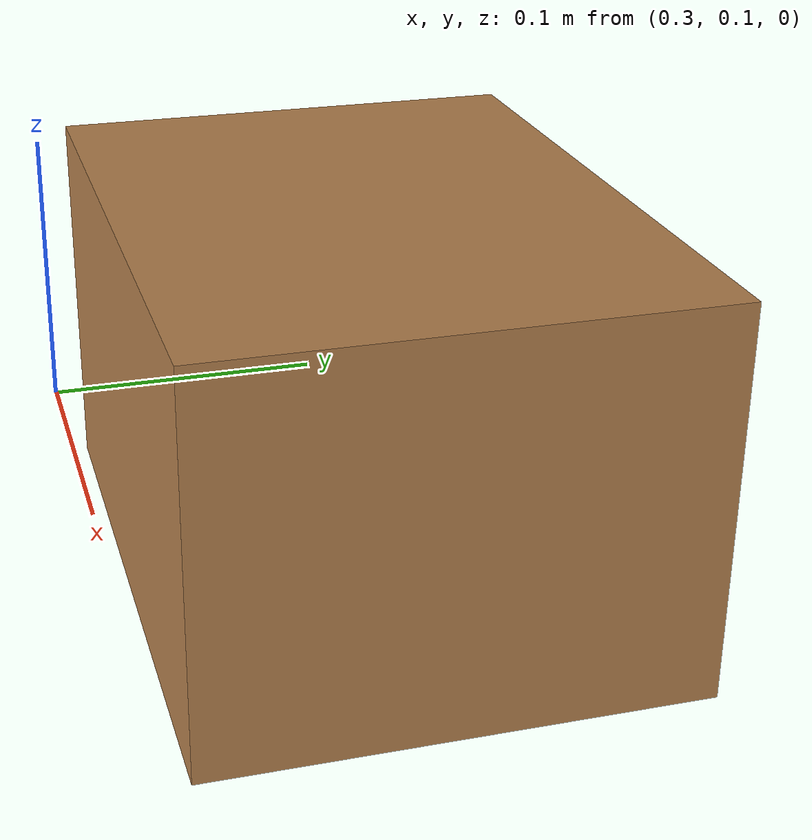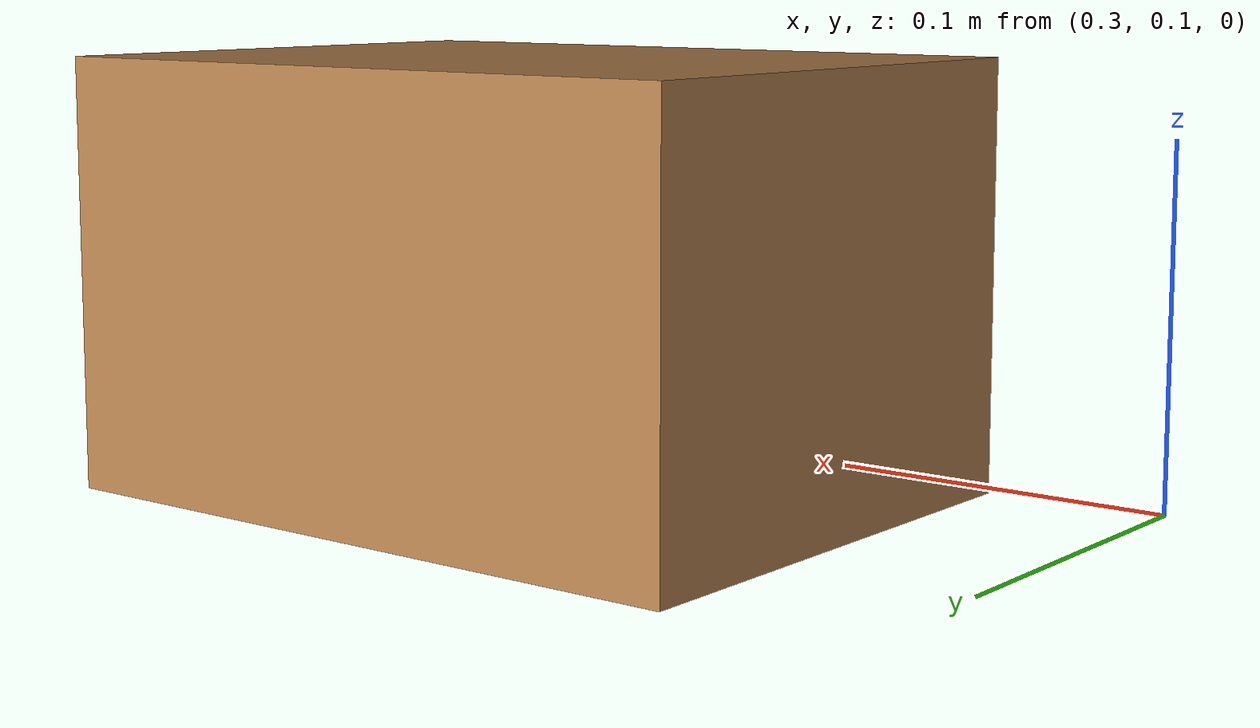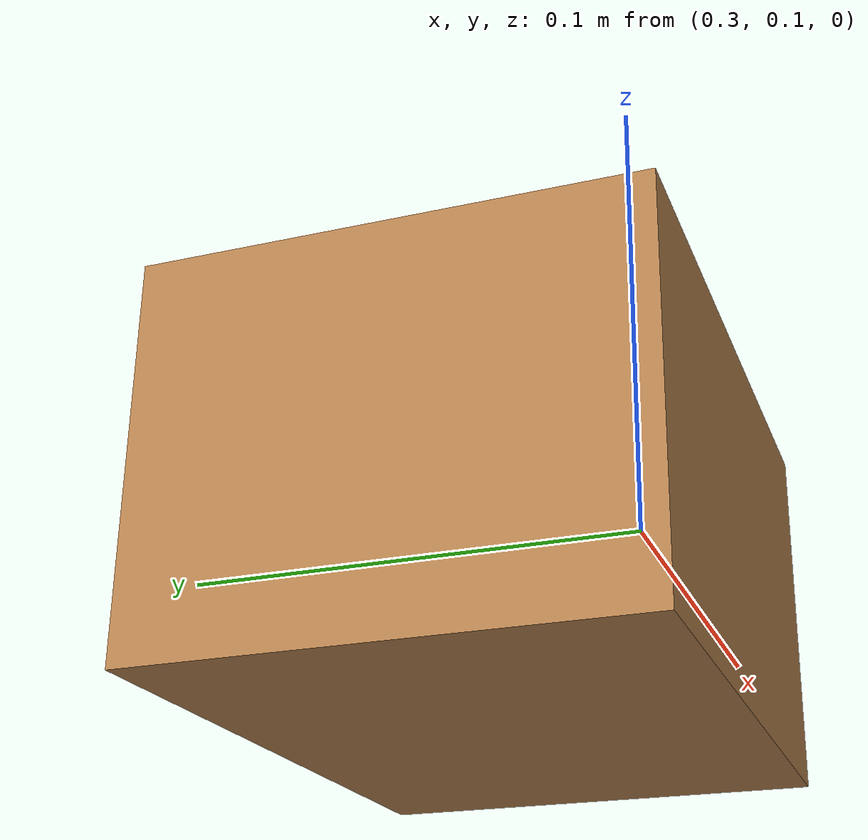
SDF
<?xml version='1.0'?>
<sdf version='1.6'>
  <model name="boxLeft">
    <link name="boxLeft">
      <pose>0.45 0.18 0.06 0 0 0</pose>
      <inertial>
        <mass>10000</mass>
      </inertial>
      <collision name="box_collision">
        <geometry>
          <box>
              <size>.2 .15 .12</size>
          </box>
        </geometry>
		<surface>
                <friction>
                  <ode>
                    <mu>1000</mu>
                    <mu2>1000</mu2>
                  </ode>
                </friction>
              </surface>
      </collision>
      <visual name="box_visual">
        <geometry>
          <box>
              <size>.2 .15 .12</size>
          </box>
        </geometry>
		<material>
                <script>
                  <uri>file://media/materials/scripts/gazebo.material</uri>
                  <name>Gazebo/Wood</name>
                </script>
              </material>
      </visual>
    </link>
  </model>
</sdf>
